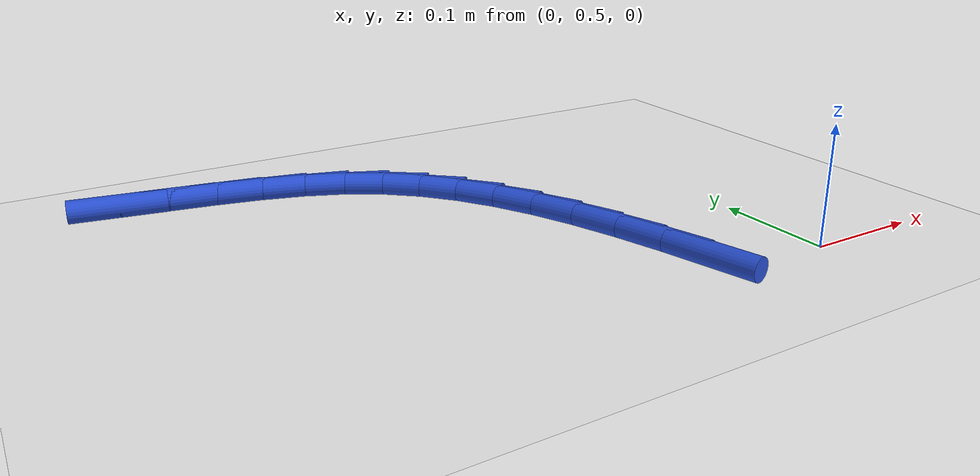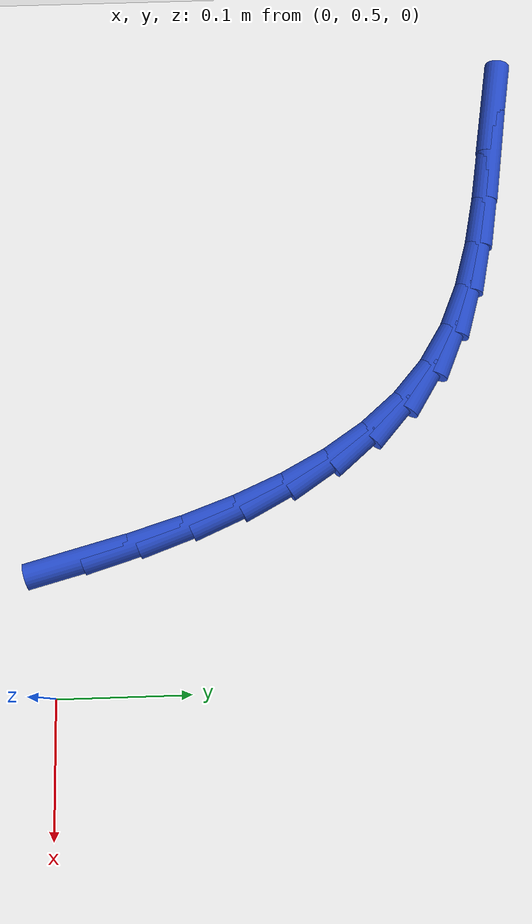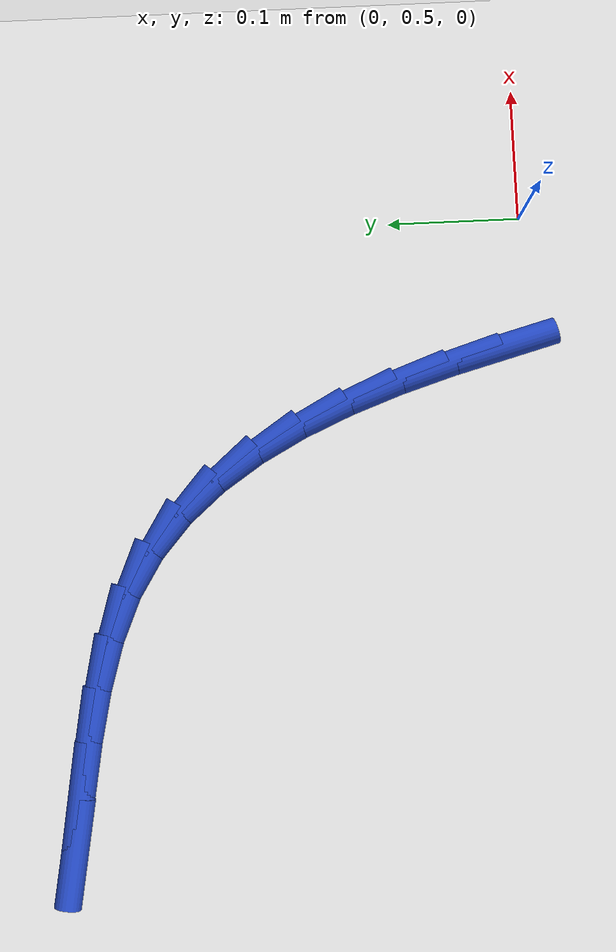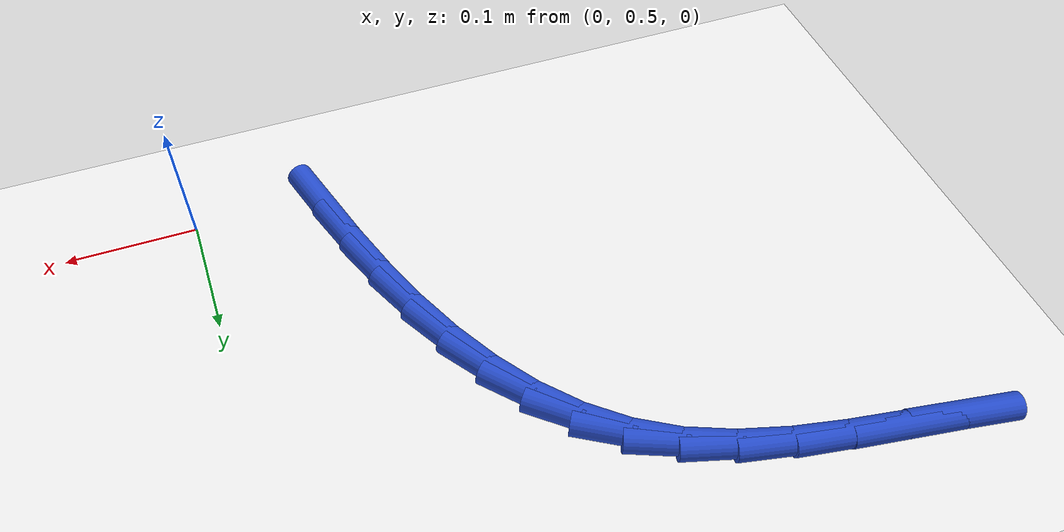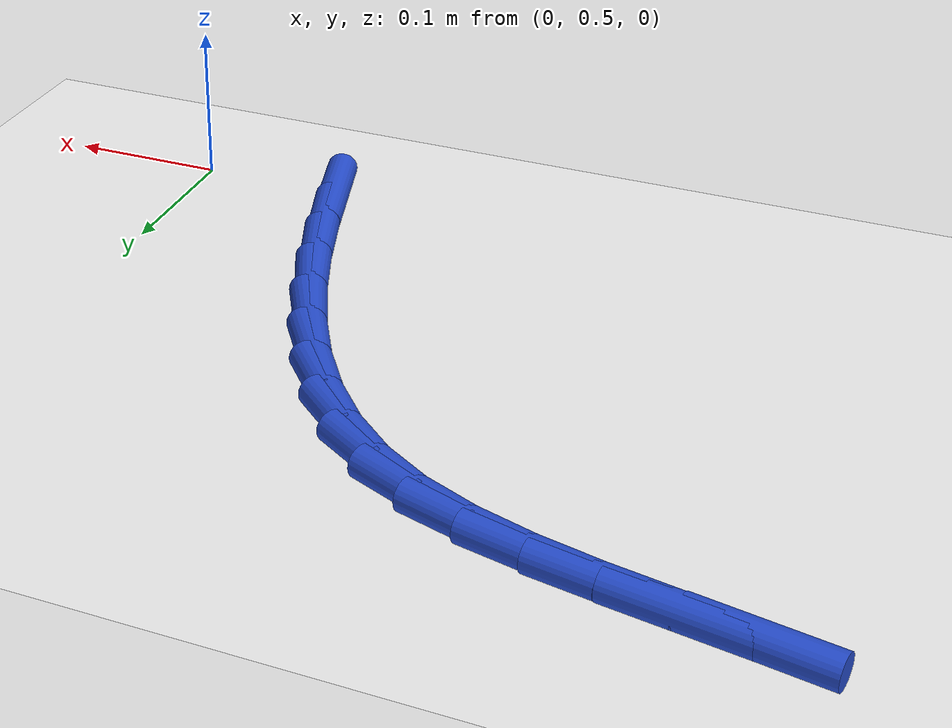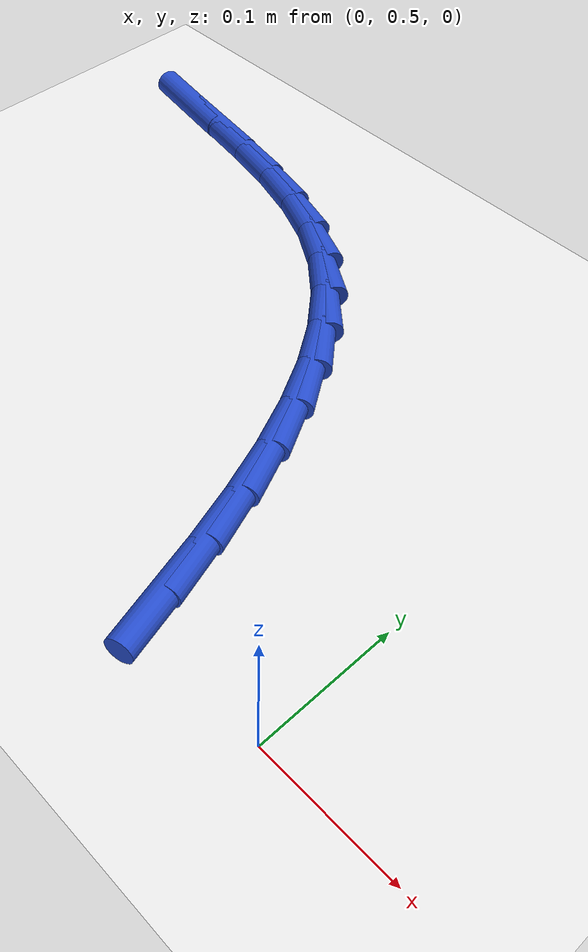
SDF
<sdf version="1.6">
 <world name="default">
  <model name="ground_plane">
   <static>1</static>
   <link name="link">
    <collision name="collision">
     <geometry><plane><normal>0 0 1</normal><size>100 100</size></plane></geometry>
     <surface><friction><ode><mu>100</mu><mu2>50</mu2></ode></friction></surface>
    </collision>
    <visual name="visual">
     <cast_shadows>0</cast_shadows>
     <geometry><plane><normal>0 0 1</normal><size>100 100</size></plane></geometry>
     <material>
      <script><uri>file://media/materials/scripts/gazebo.material</uri><name>Gazebo/WhiteGlow</name></script>
     </material>
    </visual>
   </link>
  </model>
  <model name="line">
   <link name="link_13">
    <pose>-0.09918997355732917 0.5168237313789648 0.01 0 1.57 -1.308156172855228</pose>
    <collision name="collision">
     <geometry><cylinder><radius>0.01</radius><length>0.08</length></cylinder></geometry>
    </collision>
    <visual name="visual">
     <material>
      <script><name>Gazebo/Blue</name><uri>file://media/materials/scripts/gazebo.material</uri></script>
     </material>
     <geometry><cylinder><radius>0.01</radius><length>0.08</length></cylinder></geometry>
    </visual>
   </link>
   <link name="link_14">
    <pose>-0.11036667008069828 0.5583958892771769 0.01 0 1.57 -1.2706930697005803</pose>
    <collision name="collision">
     <geometry><cylinder><radius>0.01</radius><length>0.08</length></cylinder></geometry>
    </collision>
    <visual name="visual">
     <material>
      <script><name>Gazebo/Blue</name><uri>file://media/materials/scripts/gazebo.material</uri></script>
     </material>
     <geometry><cylinder><radius>0.01</radius><length>0.08</length></cylinder></geometry>
    </visual>
   </link>
   <link name="link_15">
    <pose>-0.1228428341768028 0.5987131898242023 0.01 0 1.57 -1.2210729023385336</pose>
    <collision name="collision">
     <geometry><cylinder><radius>0.01</radius><length>0.08</length></cylinder></geometry>
    </collision>
    <visual name="visual">
     <material>
      <script><name>Gazebo/Blue</name><uri>file://media/materials/scripts/gazebo.material</uri></script>
     </material>
     <geometry><cylinder><radius>0.01</radius><length>0.08</length></cylinder></geometry>
    </visual>
   </link>
   <link name="link_16">
    <pose>-0.13691868679347874 0.6373072943152678 0.01 0 1.57 -1.157241945169081</pose>
    <collision name="collision">
     <geometry><cylinder><radius>0.01</radius><length>0.08</length></cylinder></geometry>
    </collision>
    <visual name="visual">
     <material>
      <script><name>Gazebo/Blue</name><uri>file://media/materials/scripts/gazebo.material</uri></script>
     </material>
     <geometry><cylinder><radius>0.01</radius><length>0.08</length></cylinder></geometry>
    </visual>
   </link>
   <link name="link_17">
    <pose>-0.15289444887856227 0.6737098640456011 0.01 0 1.57 -1.0766999290949455</pose>
    <collision name="collision">
     <geometry><cylinder><radius>0.01</radius><length>0.08</length></cylinder></geometry>
    </collision>
    <visual name="visual">
     <material>
      <script><name>Gazebo/Blue</name><uri>file://media/materials/scripts/gazebo.material</uri></script>
     </material>
     <geometry><cylinder><radius>0.01</radius><length>0.08</length></cylinder></geometry>
    </visual>
   </link>
   <link name="link_18">
    <pose>-0.17107034137988955 0.7074525603104292 0.01 0 1.57 -0.9767893826048268</pose>
    <collision name="collision">
     <geometry><cylinder><radius>0.01</radius><length>0.08</length></cylinder></geometry>
    </collision>
    <visual name="visual">
     <material>
      <script><name>Gazebo/Blue</name><uri>file://media/materials/scripts/gazebo.material</uri></script>
     </material>
     <geometry><cylinder><radius>0.01</radius><length>0.08</length></cylinder></geometry>
    </visual>
   </link>
   <link name="link_19">
    <pose>-0.19174658524529664 0.7380670444049798 0.01 0 1.57 -0.8554119586579254</pose>
    <collision name="collision">
     <geometry><cylinder><radius>0.01</radius><length>0.08</length></cylinder></geometry>
    </collision>
    <visual name="visual">
     <material>
      <script><name>Gazebo/Blue</name><uri>file://media/materials/scripts/gazebo.material</uri></script>
     </material>
     <geometry><cylinder><radius>0.01</radius><length>0.08</length></cylinder></geometry>
    </visual>
   </link>
   <link name="link_20">
    <pose>-0.21522340142261973 0.7650849776244799 0.01 0 1.57 -0.7123501342250036</pose>
    <collision name="collision">
     <geometry><cylinder><radius>0.01</radius><length>0.08</length></cylinder></geometry>
    </collision>
    <visual name="visual">
     <material>
      <script><name>Gazebo/Blue</name><uri>file://media/materials/scripts/gazebo.material</uri></script>
     </material>
     <geometry><cylinder><radius>0.01</radius><length>0.08</length></cylinder></geometry>
    </visual>
   </link>
   <link name="link_21">
    <pose>-0.2418010108596948 0.7880380212641569 0.01 0 1.57 -0.5512669641992515</pose>
    <collision name="collision">
     <geometry><cylinder><radius>0.01</radius><length>0.08</length></cylinder></geometry>
    </collision>
    <visual name="visual">
     <material>
      <script><name>Gazebo/Blue</name><uri>file://media/materials/scripts/gazebo.material</uri></script>
     </material>
     <geometry><cylinder><radius>0.01</radius><length>0.08</length></cylinder></geometry>
    </visual>
   </link>
   <link name="link_22">
    <pose>-0.2717738640512207 0.8064668235413669 0.01 0 1.57 -0.39767166093975875</pose>
    <collision name="collision">
     <geometry><cylinder><radius>0.01</radius><length>0.08</length></cylinder></geometry>
    </collision>
    <visual name="visual">
     <material>
      <script><name>Gazebo/Blue</name><uri>file://media/materials/scripts/gazebo.material</uri></script>
     </material>
     <geometry><cylinder><radius>0.01</radius><length>0.08</length></cylinder></geometry>
    </visual>
   </link>
   <link name="link_23">
    <pose>-0.30508505567657657 0.8204592353413556 0.01 0 1.57 -0.2833727117920322</pose>
    <collision name="collision">
     <geometry><cylinder><radius>0.01</radius><length>0.08</length></cylinder></geometry>
    </collision>
    <visual name="visual">
     <material>
      <script><name>Gazebo/Blue</name><uri>file://media/materials/scripts/gazebo.material</uri></script>
     </material>
     <geometry><cylinder><radius>0.01</radius><length>0.08</length></cylinder></geometry>
    </visual>
   </link>
   <link name="link_24">
    <pose>-0.3411301092904989 0.8309558965660844 0.01 0 1.57 -0.20721285598285735</pose>
    <collision name="collision">
     <geometry><cylinder><radius>0.01</radius><length>0.08</length></cylinder></geometry>
    </collision>
    <visual name="visual">
     <material>
      <script><name>Gazebo/Blue</name><uri>file://media/materials/scripts/gazebo.material</uri></script>
     </material>
     <geometry><cylinder><radius>0.01</radius><length>0.08</length></cylinder></geometry>
    </visual>
   </link>
   <link name="link_25">
    <pose>-0.3792570967580207 0.8389713485304704 0.01 0 1.57 -0.16406504067815078</pose>
    <collision name="collision">
     <geometry><cylinder><radius>0.01</radius><length>0.08</length></cylinder></geometry>
    </collision>
    <visual name="visual">
     <material>
      <script><name>Gazebo/Blue</name><uri>file://media/materials/scripts/gazebo.material</uri></script>
     </material>
     <geometry><cylinder><radius>0.01</radius><length>0.08</length></cylinder></geometry>
    </visual>
   </link>
   <link name="link_26">
    <pose>-0.4188140899441745 0.8455201325494298 0.01 0 1.57 -0.15001472913109795</pose>
    <collision name="collision">
     <geometry><cylinder><radius>0.01</radius><length>0.08</length></cylinder></geometry>
    </collision>
    <visual name="visual">
     <material>
      <script><name>Gazebo/Blue</name><uri>file://media/materials/scripts/gazebo.material</uri></script>
     </material>
     <geometry><cylinder><radius>0.01</radius><length>0.08</length></cylinder></geometry>
    </visual>
   </link>
   <link name="link_27">
    <pose>-0.4591491607139927 0.851616789937879 0.01 0 1.57 -0.16311686723959543</pose>
    <collision name="collision">
     <geometry><cylinder><radius>0.01</radius><length>0.08</length></cylinder></geometry>
    </collision>
    <visual name="visual">
     <material>
      <script><name>Gazebo/Blue</name><uri>file://media/materials/scripts/gazebo.material</uri></script>
     </material>
     <geometry><cylinder><radius>0.01</radius><length>0.08</length></cylinder></geometry>
    </visual>
   </link>
  </model>
 </world>
</sdf>
